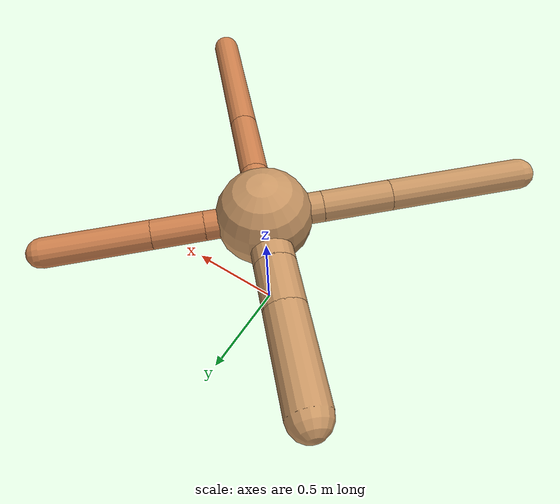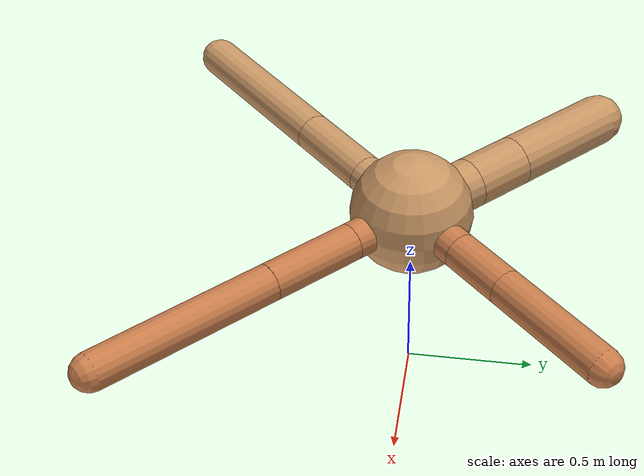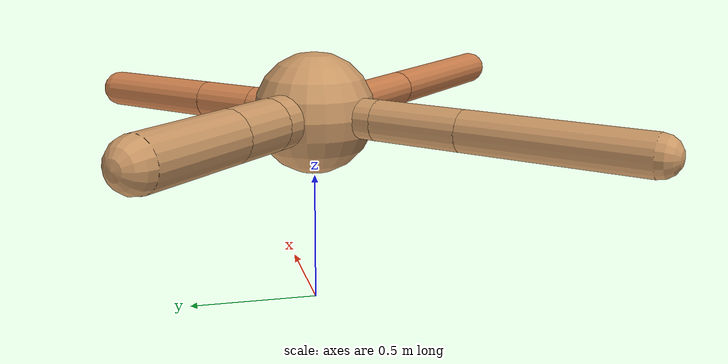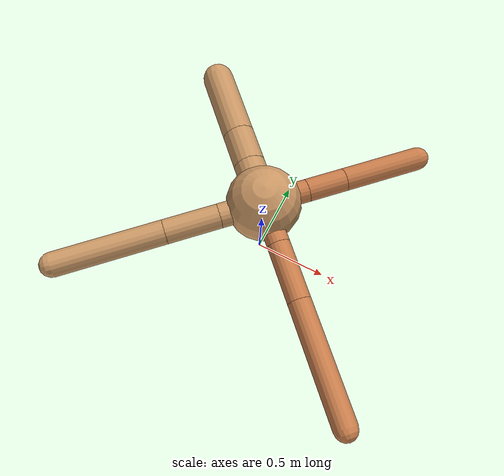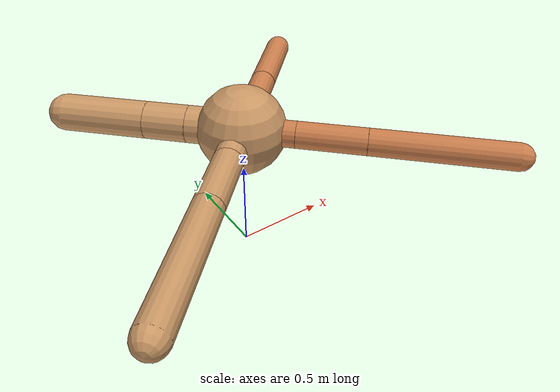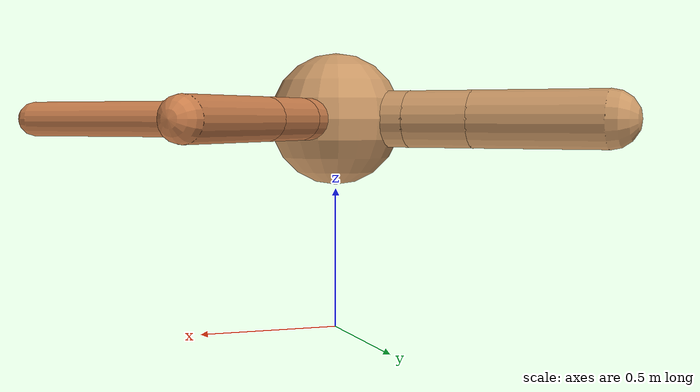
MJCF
<?xml version="1.0" ?>
<mujoco model="ant">

	<compiler angle="degree" coordinate="local" inertiafromgeom="true"/>

	<option integrator="RK4" timestep="0.01"/>

	<custom>

		<numeric data="0.0 0.0 0.55 1.0 0.0 0.0 0.0 0.0 1.0 0.0 -1.0 0.0 -1.0 0.0 1.0" name="init_qpos"/>

	</custom>

	<default>

		<joint armature="1" damping="1" limited="true"/>

		<geom conaffinity="0" condim="3" density="5.0" friction="1.5 0.1 0.1" margin="0.01" rgba="0.8 0.6 0.4 1"/>

	</default>

	<worldbody>

		<body name="torso" pos="0 0 0.75">

			<geom name="torso_geom" pos="0 0 0" size="0.23356118806535256" type="sphere"/>

			<!--joint armature="0" damping="0" limited="false" margin="0.01" name="root" pos="0 0 0" type="free"/-->

			<body name="front_left_leg" pos="0 0 0">

				<geom fromto="0 0 0 0.2 0.2 0" name="aux_1_geom" size="0.07125185334428259" type="capsule" rgba=".8 .5 .3 1"/>

				<body name="aux_1" pos="0.2 0.2 0">

					<joint axis="0 0 1" name="hip_1" pos="0.0 0.0 0.0" range="-40 40" type="hinge"/>

					<geom fromto="0 0 0 0.1735313664478929 0.1735313664478929 0" name="left_leg_geom" size="0.07125185334428259" type="capsule" rgba=".8 .5 .3 1"/>

					<body pos="0.1735313664478929 0.1735313664478929 0" name="front_left_foot">

						<joint axis="-1 1 0" name="ankle_1" pos="0.0 0.0 0.0" range="30 100" type="hinge"/>

						<geom fromto="0 0 0 0.3470627328957858 0.3470627328957858 0" name="left_ankle_geom" size="0.07125185334428259" type="capsule" rgba=".8 .5 .3 1"/>

					</body>

				</body>

			</body>

			<body name="front_right_leg" pos="0 0 0">

				<geom fromto="0 0 0 -0.2 0.2 0" name="aux_2_geom" size="0.09898908211825411" type="capsule"/>

				<body name="aux_2" pos="-0.2 0.2 0">

					<joint axis="0 0 1" name="hip_2" pos="0.0 0.0 0.0" range="-40 40" type="hinge"/>

					<geom fromto="0 0 0 -0.15951420040102482 0.15951420040102482 0" name="right_leg_geom" size="0.09898908211825411" type="capsule"/>

					<body pos="-0.15951420040102482 0.15951420040102482 0" name="front_right_foot">

						<joint axis="1 1 0" name="ankle_2" pos="0.0 0.0 0.0" range="-100 -30" type="hinge"/>

						<geom fromto="0 0 0 -0.31902840080204964 0.31902840080204964 0" name="right_ankle_geom" size="0.09898908211825411" type="capsule"/>

					</body>

				</body>

			</body>

			<body name="left_back_leg" pos="0 0 0">

				<geom fromto="0 0 0 -0.2 -0.2 0" name="aux_3_geom" size="0.07655548198919827" type="capsule"/>

				<body name="aux_3" pos="-0.2 -0.2 0">

					<joint axis="0 0 1" name="hip_3" pos="0.0 0.0 0.0" range="-40 40" type="hinge"/>

					<geom fromto="0 0 0 -0.2408870524208279 -0.2408870524208279 0" name="back_leg_geom" size="0.07655548198919827" type="capsule"/>

					<body pos="-0.2408870524208279 -0.2408870524208279 0" name="left_back_foot">

						<joint axis="-1 1 0" name="ankle_3" pos="0.0 0.0 0.0" range="-100 -30" type="hinge"/>

						<geom fromto="0 0 0 -0.4817741048416558 -0.4817741048416558 0" name="third_ankle_geom" size="0.07655548198919827" type="capsule"/>

					</body>

				</body>

			</body>

			<body name="right_back_leg" pos="0 0 0">

				<geom fromto="0 0 0 0.2 -0.2 0" name="aux_4_geom" size="0.07080138457562755" type="capsule" rgba=".8 .5 .3 1"/>

				<body name="aux_4" pos="0.2 -0.2 0">

					<joint axis="0 0 1" name="hip_4" pos="0.0 0.0 0.0" range="-40 40" type="hinge"/>

					<geom fromto="0 0 0 0.25490760722974287 -0.25490760722974287 0" name="rightback_leg_geom" size="0.07080138457562755" type="capsule" rgba=".8 .5 .3 1"/>

					<body pos="0.25490760722974287 -0.25490760722974287 0" name="right_back_foot">

						<joint axis="1 1 0" name="ankle_4" pos="0.0 0.0 0.0" range="30 100" type="hinge"/>

						<geom fromto="0 0 0 0.5098152144594857 -0.5098152144594857 0" name="fourth_ankle_geom" size="0.07080138457562755" type="capsule" rgba=".8 .5 .3 1"/>

					</body>

				</body>

			</body>

		</body>

	</worldbody>

	<actuator>

		<motor ctrllimited="true" ctrlrange="-1.0 1.0" joint="hip_4" gear="150"/>

		<motor ctrllimited="true" ctrlrange="-1.0 1.0" joint="ankle_4" gear="150"/>

		<motor ctrllimited="true" ctrlrange="-1.0 1.0" joint="hip_1" gear="150"/>

		<motor ctrllimited="true" ctrlrange="-1.0 1.0" joint="ankle_1" gear="150"/>

		<motor ctrllimited="true" ctrlrange="-1.0 1.0" joint="hip_2" gear="150"/>

		<motor ctrllimited="true" ctrlrange="-1.0 1.0" joint="ankle_2" gear="150"/>

		<motor ctrllimited="true" ctrlrange="-1.0 1.0" joint="hip_3" gear="150"/>

		<motor ctrllimited="true" ctrlrange="-1.0 1.0" joint="ankle_3" gear="150"/>

	</actuator>

</mujoco>
